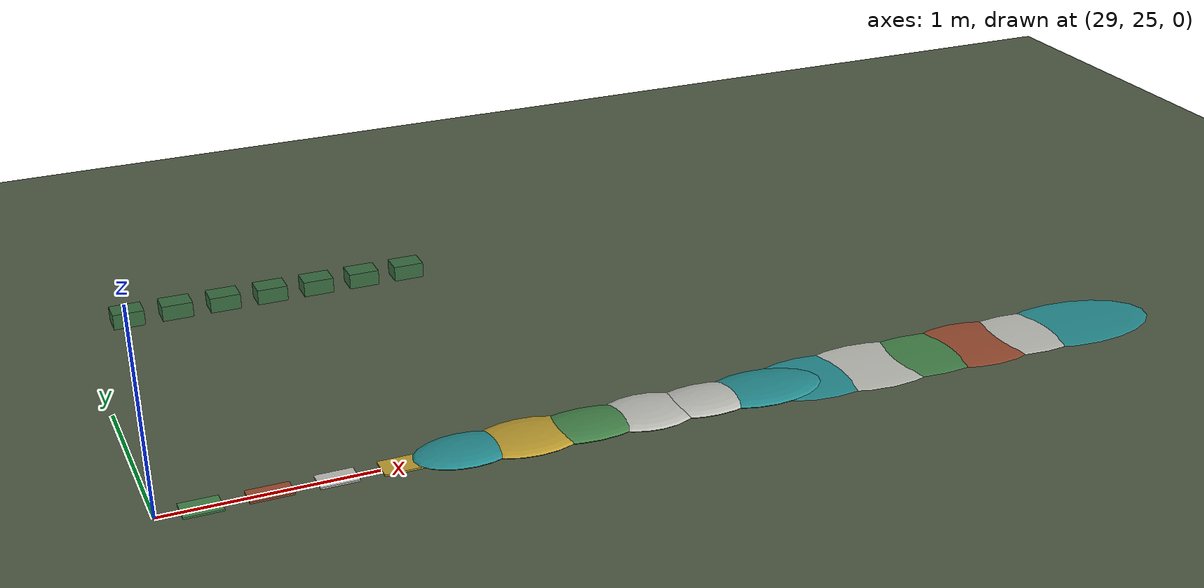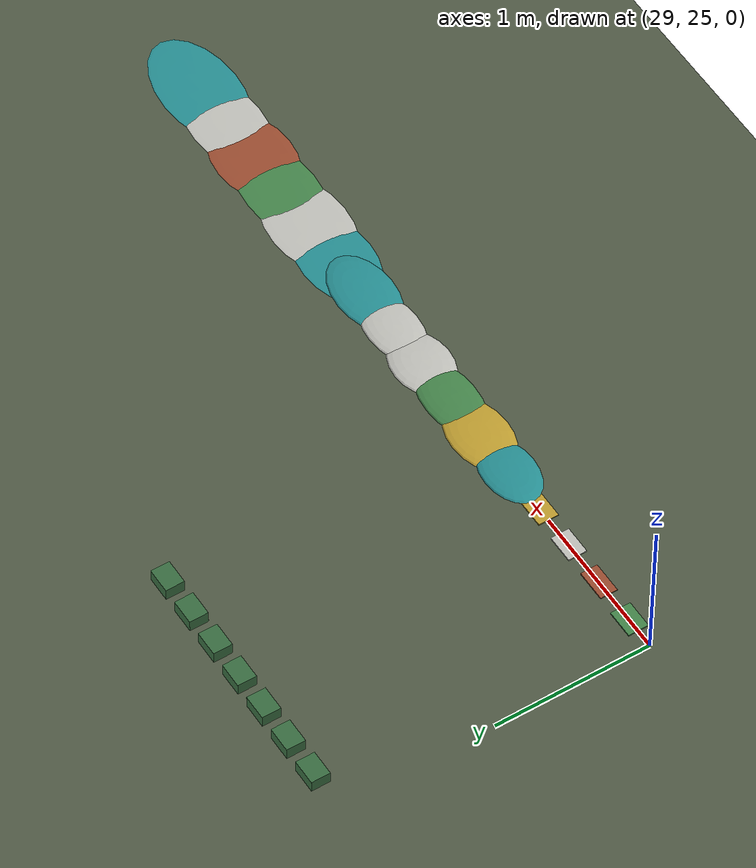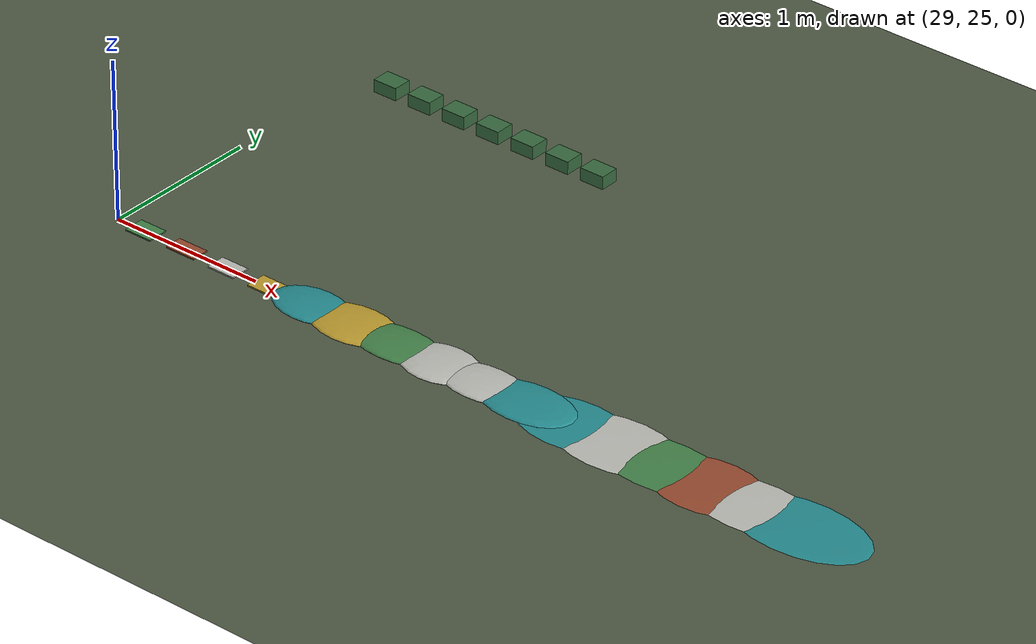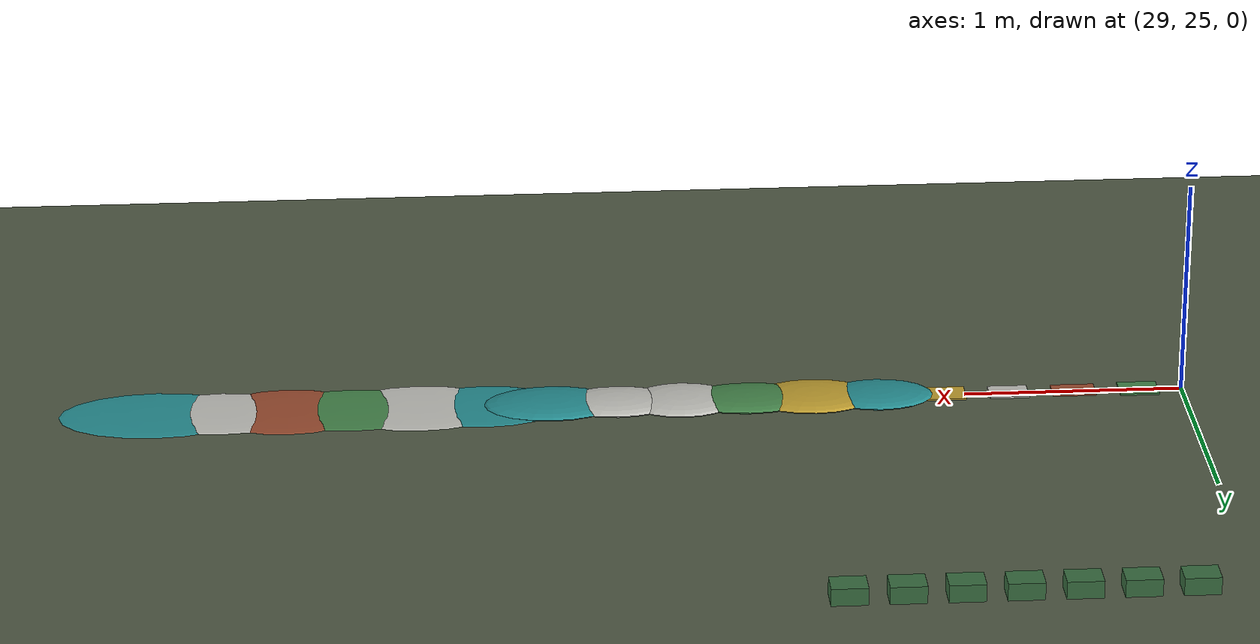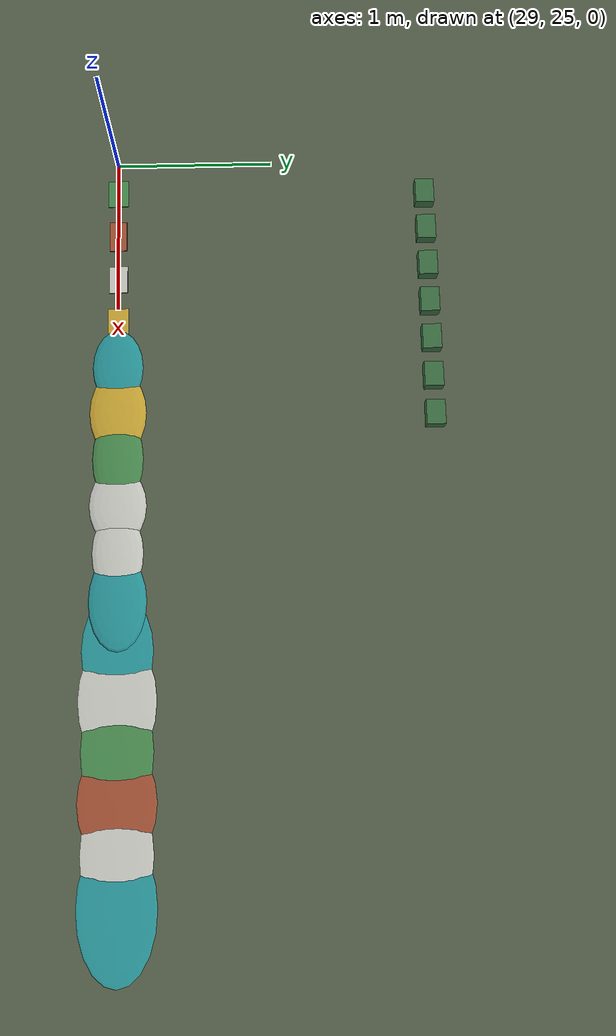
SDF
<sdf version="1.9">
 <world name="world_d_mixed_curb_vegetation">
  <model name="ground">
   <static>true</static>
   <link name="ground">
    <collision name="collision">
     <geometry><plane><normal>0 0 1</normal><size>80 80</size></plane></geometry>
    </collision>
    <visual name="visual">
     <geometry><plane><normal>0 0 1</normal><size>80 80</size></plane></geometry>
     <material>
      <ambient>0.31 0.35 0.27 1</ambient>
      <diffuse>0.31 0.35 0.27 1</diffuse>
      <specular>0.10 0.10 0.10 1</specular>
      <pbr><metal><roughness>0.76</roughness><metalness>0</metalness></metal></pbr>
     </material>
    </visual>
   </link>
  </model>
  <model name="paper_long_bands">
   <static>true</static>
   <pose>29.200 25 0.0080 0 0 0</pose>
   <link name="body">
    <visual name="visual">
     <geometry><box><size>0.1800 0.1300 0.0080</size></box></geometry>
     <material>
      <ambient>0.26667 0.51765 0.29020 1</ambient>
      <diffuse>0.26667 0.51765 0.29020 1</diffuse>
      <specular>0.10 0.10 0.10 1</specular>
      <pbr><metal><roughness>0.68</roughness><metalness>0</metalness></metal></pbr>
     </material>
    </visual>
    <collision name="collision"><geometry><box><size>0.1800 0.1300 0.0080</size></box></geometry></collision>
   </link>
   <plugin filename="gz-sim-label-system" name="gz::sim::systems::Label"><label>3</label></plugin>
  </model>
  <model name="paper_crumpled">
   <static>true</static>
   <pose>29.500 25 0.0080 0 0 0</pose>
   <link name="body">
    <visual name="visual">
     <geometry><box><size>0.2000 0.1100 0.0080</size></box></geometry>
     <material>
      <ambient>0.60392 0.29804 0.18824 1</ambient>
      <diffuse>0.60392 0.29804 0.18824 1</diffuse>
      <specular>0.10 0.10 0.10 1</specular>
      <pbr><metal><roughness>0.68</roughness><metalness>0</metalness></metal></pbr>
     </material>
    </visual>
    <collision name="collision"><geometry><box><size>0.2000 0.1100 0.0080</size></box></geometry></collision>
   </link>
   <plugin filename="gz-sim-label-system" name="gz::sim::systems::Label"><label>3</label></plugin>
  </model>
  <model name="paper_matte_grid">
   <static>true</static>
   <pose>29.800 25 0.0080 0 0 0</pose>
   <link name="body">
    <visual name="visual">
     <geometry><box><size>0.1800 0.1200 0.0080</size></box></geometry>
     <material>
      <ambient>0.74510 0.74510 0.72157 1</ambient>
      <diffuse>0.74510 0.74510 0.72157 1</diffuse>
      <specular>0.10 0.10 0.10 1</specular>
      <pbr><metal><roughness>0.68</roughness><metalness>0</metalness></metal></pbr>
     </material>
    </visual>
    <collision name="collision"><geometry><box><size>0.1800 0.1200 0.0080</size></box></geometry></collision>
   </link>
   <plugin filename="gz-sim-label-system" name="gz::sim::systems::Label"><label>3</label></plugin>
  </model>
  <model name="paper_unseen_torn">
   <static>true</static>
   <pose>30.100 25 0.0080 0 0 0</pose>
   <link name="body">
    <visual name="visual">
     <geometry><box><size>0.2000 0.1300 0.0080</size></box></geometry>
     <material>
      <ambient>0.74510 0.61569 0.18824 1</ambient>
      <diffuse>0.74510 0.61569 0.18824 1</diffuse>
      <specular>0.10 0.10 0.10 1</specular>
      <pbr><metal><roughness>0.68</roughness><metalness>0</metalness></metal></pbr>
     </material>
    </visual>
    <collision name="collision"><geometry><box><size>0.2000 0.1300 0.0080</size></box></geometry></collision>
   </link>
   <plugin filename="gz-sim-label-system" name="gz::sim::systems::Label"><label>3</label></plugin>
  </model>
  <model name="leaves_sparse">
   <static>true</static>
   <pose>30.400 25 0.0125 0 0 0</pose>
   <link name="body">
    <visual name="visual">
     <geometry><ellipsoid><radii>0.2500 0.1600 0.0250</radii></ellipsoid></geometry>
     <material>
      <ambient>0.14902 0.55686 0.57255 1</ambient>
      <diffuse>0.14902 0.55686 0.57255 1</diffuse>
      <specular>0.10 0.10 0.10 1</specular>
      <pbr><metal><roughness>0.68</roughness><metalness>0</metalness></metal></pbr>
     </material>
    </visual>
    <collision name="collision">
     <geometry><ellipsoid><radii>0.2500 0.1600 0.0250</radii></ellipsoid></geometry>
    </collision>
   </link>
   <plugin filename="gz-sim-label-system" name="gz::sim::systems::Label"><label>4</label></plugin>
  </model>
  <model name="leaves_dense">
   <static>true</static>
   <pose>30.700 25 0.0125 0 0 0</pose>
   <link name="body">
    <visual name="visual">
     <geometry><ellipsoid><radii>0.2800 0.1800 0.0250</radii></ellipsoid></geometry>
     <material>
      <ambient>0.74510 0.61569 0.18824 1</ambient>
      <diffuse>0.74510 0.61569 0.18824 1</diffuse>
      <specular>0.10 0.10 0.10 1</specular>
      <pbr><metal><roughness>0.68</roughness><metalness>0</metalness></metal></pbr>
     </material>
    </visual>
    <collision name="collision">
     <geometry><ellipsoid><radii>0.2800 0.1800 0.0250</radii></ellipsoid></geometry>
    </collision>
   </link>
   <plugin filename="gz-sim-label-system" name="gz::sim::systems::Label"><label>4</label></plugin>
  </model>
  <model name="leaves_long">
   <static>true</static>
   <pose>31.000 25 0.0125 0 0 0</pose>
   <link name="body">
    <visual name="visual">
     <geometry><ellipsoid><radii>0.3100 0.1600 0.0250</radii></ellipsoid></geometry>
     <material>
      <ambient>0.26667 0.51765 0.29020 1</ambient>
      <diffuse>0.26667 0.51765 0.29020 1</diffuse>
      <specular>0.10 0.10 0.10 1</specular>
      <pbr><metal><roughness>0.68</roughness><metalness>0</metalness></metal></pbr>
     </material>
    </visual>
    <collision name="collision">
     <geometry><ellipsoid><radii>0.3100 0.1600 0.0250</radii></ellipsoid></geometry>
    </collision>
   </link>
   <plugin filename="gz-sim-label-system" name="gz::sim::systems::Label"><label>4</label></plugin>
  </model>
  <model name="leaves_mixed">
   <static>true</static>
   <pose>31.300 25 0.0125 0 0 0</pose>
   <link name="body">
    <visual name="visual">
     <geometry><ellipsoid><radii>0.2500 0.1800 0.0250</radii></ellipsoid></geometry>
     <material>
      <ambient>0.74510 0.74510 0.72157 1</ambient>
      <diffuse>0.74510 0.74510 0.72157 1</diffuse>
      <specular>0.10 0.10 0.10 1</specular>
      <pbr><metal><roughness>0.68</roughness><metalness>0</metalness></metal></pbr>
     </material>
    </visual>
    <collision name="collision">
     <geometry><ellipsoid><radii>0.2500 0.1800 0.0250</radii></ellipsoid></geometry>
    </collision>
   </link>
   <plugin filename="gz-sim-label-system" name="gz::sim::systems::Label"><label>4</label></plugin>
  </model>
  <model name="leaves_matte">
   <static>true</static>
   <pose>31.600 25 0.0125 0 0 0</pose>
   <link name="body">
    <visual name="visual">
     <geometry><ellipsoid><radii>0.2800 0.1600 0.0250</radii></ellipsoid></geometry>
     <material>
      <ambient>0.74510 0.74510 0.72157 1</ambient>
      <diffuse>0.74510 0.74510 0.72157 1</diffuse>
      <specular>0.10 0.10 0.10 1</specular>
      <pbr><metal><roughness>0.68</roughness><metalness>0</metalness></metal></pbr>
     </material>
    </visual>
    <collision name="collision">
     <geometry><ellipsoid><radii>0.2800 0.1600 0.0250</radii></ellipsoid></geometry>
    </collision>
   </link>
   <plugin filename="gz-sim-label-system" name="gz::sim::systems::Label"><label>4</label></plugin>
  </model>
  <model name="leaves_unseen_windrow">
   <static>true</static>
   <pose>31.900 25 0.0125 0 0 0</pose>
   <link name="body">
    <visual name="visual">
     <geometry><ellipsoid><radii>0.3100 0.1800 0.0250</radii></ellipsoid></geometry>
     <material>
      <ambient>0.14902 0.55686 0.57255 1</ambient>
      <diffuse>0.14902 0.55686 0.57255 1</diffuse>
      <specular>0.10 0.10 0.10 1</specular>
      <pbr><metal><roughness>0.68</roughness><metalness>0</metalness></metal></pbr>
     </material>
    </visual>
    <collision name="collision">
     <geometry><ellipsoid><radii>0.3100 0.1800 0.0250</radii></ellipsoid></geometry>
    </collision>
   </link>
   <plugin filename="gz-sim-label-system" name="gz::sim::systems::Label"><label>4</label></plugin>
  </model>
  <model name="puddle_matte_small">
   <static>true</static>
   <pose>32.200 25 0.0080 0 0 0</pose>
   <link name="body">
    <visual name="visual">
     <geometry><ellipsoid><radii>0.3600 0.2200 0.0060</radii></ellipsoid></geometry>
     <material>
      <ambient>0.14902 0.55686 0.57255 1</ambient>
      <diffuse>0.14902 0.55686 0.57255 1</diffuse>
      <specular>0.10 0.10 0.10 1</specular>
      <pbr><metal><roughness>0.68</roughness><metalness>0</metalness></metal></pbr>
     </material>
    </visual>
    <collision name="collision">
     <geometry><ellipsoid><radii>0.3600 0.2200 0.0060</radii></ellipsoid></geometry>
    </collision>
   </link>
   <plugin filename="gz-sim-label-system" name="gz::sim::systems::Label"><label>5</label></plugin>
  </model>
  <model name="puddle_reflective">
   <static>true</static>
   <pose>32.500 25 0.0080 0 0 0</pose>
   <link name="body">
    <visual name="visual">
     <geometry><ellipsoid><radii>0.4000 0.2400 0.0060</radii></ellipsoid></geometry>
     <material>
      <ambient>0.74510 0.74510 0.72157 1</ambient>
      <diffuse>0.74510 0.74510 0.72157 1</diffuse>
      <specular>0.10 0.10 0.10 1</specular>
      <pbr><metal><roughness>0.68</roughness><metalness>0</metalness></metal></pbr>
     </material>
    </visual>
    <collision name="collision">
     <geometry><ellipsoid><radii>0.4000 0.2400 0.0060</radii></ellipsoid></geometry>
    </collision>
   </link>
   <plugin filename="gz-sim-label-system" name="gz::sim::systems::Label"><label>5</label></plugin>
  </model>
  <model name="puddle_irregular">
   <static>true</static>
   <pose>32.800 25 0.0080 0 0 0</pose>
   <link name="body">
    <visual name="visual">
     <geometry><ellipsoid><radii>0.4400 0.2200 0.0060</radii></ellipsoid></geometry>
     <material>
      <ambient>0.26667 0.51765 0.29020 1</ambient>
      <diffuse>0.26667 0.51765 0.29020 1</diffuse>
      <specular>0.10 0.10 0.10 1</specular>
      <pbr><metal><roughness>0.68</roughness><metalness>0</metalness></metal></pbr>
     </material>
    </visual>
    <collision name="collision">
     <geometry><ellipsoid><radii>0.4400 0.2200 0.0060</radii></ellipsoid></geometry>
    </collision>
   </link>
   <plugin filename="gz-sim-label-system" name="gz::sim::systems::Label"><label>5</label></plugin>
  </model>
  <model name="puddle_shallow">
   <static>true</static>
   <pose>33.100 25 0.0080 0 0 0</pose>
   <link name="body">
    <visual name="visual">
     <geometry><ellipsoid><radii>0.3600 0.2400 0.0060</radii></ellipsoid></geometry>
     <material>
      <ambient>0.60392 0.29804 0.18824 1</ambient>
      <diffuse>0.60392 0.29804 0.18824 1</diffuse>
      <specular>0.10 0.10 0.10 1</specular>
      <pbr><metal><roughness>0.68</roughness><metalness>0</metalness></metal></pbr>
     </material>
    </visual>
    <collision name="collision">
     <geometry><ellipsoid><radii>0.3600 0.2400 0.0060</radii></ellipsoid></geometry>
    </collision>
   </link>
   <plugin filename="gz-sim-label-system" name="gz::sim::systems::Label"><label>5</label></plugin>
  </model>
  <model name="puddle_shadowed">
   <static>true</static>
   <pose>33.400 25 0.0080 0 0 0</pose>
   <link name="body">
    <visual name="visual">
     <geometry><ellipsoid><radii>0.4000 0.2200 0.0060</radii></ellipsoid></geometry>
     <material>
      <ambient>0.74510 0.74510 0.72157 1</ambient>
      <diffuse>0.74510 0.74510 0.72157 1</diffuse>
      <specular>0.10 0.10 0.10 1</specular>
      <pbr><metal><roughness>0.68</roughness><metalness>0</metalness></metal></pbr>
     </material>
    </visual>
    <collision name="collision">
     <geometry><ellipsoid><radii>0.4000 0.2200 0.0060</radii></ellipsoid></geometry>
    </collision>
   </link>
   <plugin filename="gz-sim-label-system" name="gz::sim::systems::Label"><label>5</label></plugin>
  </model>
  <model name="puddle_unseen_split">
   <static>true</static>
   <pose>33.700 25 0.0080 0 0 0</pose>
   <link name="body">
    <visual name="visual">
     <geometry><ellipsoid><radii>0.4400 0.2400 0.0060</radii></ellipsoid></geometry>
     <material>
      <ambient>0.14902 0.55686 0.57255 1</ambient>
      <diffuse>0.14902 0.55686 0.57255 1</diffuse>
      <specular>0.10 0.10 0.10 1</specular>
      <pbr><metal><roughness>0.68</roughness><metalness>0</metalness></metal></pbr>
     </material>
    </visual>
    <collision name="collision">
     <geometry><ellipsoid><radii>0.4400 0.2400 0.0060</radii></ellipsoid></geometry>
    </collision>
   </link>
   <plugin filename="gz-sim-label-system" name="gz::sim::systems::Label"><label>5</label></plugin>
  </model>
  <model name="negative_cardboard">
   <static>true</static>
   <pose>29.25 27 0.04 0 0 0</pose>
   <link name="body">
    <visual name="visual">
     <geometry><box><size>0.16 0.12 0.08</size></box></geometry>
     <material>
      <ambient>0.22 0.42 0.25 1</ambient>
      <diffuse>0.22 0.42 0.25 1</diffuse>
      <specular>0.10 0.10 0.10 1</specular>
      <pbr><metal><roughness>0.68</roughness><metalness>0</metalness></metal></pbr>
     </material>
    </visual>
    <collision name="collision"><geometry><box><size>0.16 0.12 0.08</size></box></geometry></collision>
   </link>
   <plugin filename="gz-sim-label-system" name="gz::sim::systems::Label"><label>0</label></plugin>
  </model>
  <model name="negative_fixed_bin">
   <static>true</static>
   <pose>29.5 27 0.04 0 0 0</pose>
   <link name="body">
    <visual name="visual">
     <geometry><box><size>0.16 0.12 0.08</size></box></geometry>
     <material>
      <ambient>0.22 0.42 0.25 1</ambient>
      <diffuse>0.22 0.42 0.25 1</diffuse>
      <specular>0.10 0.10 0.10 1</specular>
      <pbr><metal><roughness>0.68</roughness><metalness>0</metalness></metal></pbr>
     </material>
    </visual>
    <collision name="collision"><geometry><box><size>0.16 0.12 0.08</size></box></geometry></collision>
   </link>
   <plugin filename="gz-sim-label-system" name="gz::sim::systems::Label"><label>0</label></plugin>
  </model>
  <model name="negative_reflective_patch">
   <static>true</static>
   <pose>29.75 27 0.04 0 0 0</pose>
   <link name="body">
    <visual name="visual">
     <geometry><box><size>0.16 0.12 0.08</size></box></geometry>
     <material>
      <ambient>0.22 0.42 0.25 1</ambient>
      <diffuse>0.22 0.42 0.25 1</diffuse>
      <specular>0.10 0.10 0.10 1</specular>
      <pbr><metal><roughness>0.68</roughness><metalness>0</metalness></metal></pbr>
     </material>
    </visual>
    <collision name="collision"><geometry><box><size>0.16 0.12 0.08</size></box></geometry></collision>
   </link>
   <plugin filename="gz-sim-label-system" name="gz::sim::systems::Label"><label>0</label></plugin>
  </model>
  <model name="negative_shadow">
   <static>true</static>
   <pose>30.0 27 0.04 0 0 0</pose>
   <link name="body">
    <visual name="visual">
     <geometry><box><size>0.16 0.12 0.08</size></box></geometry>
     <material>
      <ambient>0.22 0.42 0.25 1</ambient>
      <diffuse>0.22 0.42 0.25 1</diffuse>
      <specular>0.10 0.10 0.10 1</specular>
      <pbr><metal><roughness>0.68</roughness><metalness>0</metalness></metal></pbr>
     </material>
    </visual>
    <collision name="collision"><geometry><box><size>0.16 0.12 0.08</size></box></geometry></collision>
   </link>
   <plugin filename="gz-sim-label-system" name="gz::sim::systems::Label"><label>0</label></plugin>
  </model>
  <model name="negative_wet_asphalt">
   <static>true</static>
   <pose>30.25 27 0.04 0 0 0</pose>
   <link name="body">
    <visual name="visual">
     <geometry><box><size>0.16 0.12 0.08</size></box></geometry>
     <material>
      <ambient>0.22 0.42 0.25 1</ambient>
      <diffuse>0.22 0.42 0.25 1</diffuse>
      <specular>0.10 0.10 0.10 1</specular>
      <pbr><metal><roughness>0.68</roughness><metalness>0</metalness></metal></pbr>
     </material>
    </visual>
    <collision name="collision"><geometry><box><size>0.16 0.12 0.08</size></box></geometry></collision>
   </link>
   <plugin filename="gz-sim-label-system" name="gz::sim::systems::Label"><label>0</label></plugin>
  </model>
  <model name="negative_leaves_outside_target_region">
   <static>true</static>
   <pose>30.5 27 0.04 0 0 0</pose>
   <link name="body">
    <visual name="visual">
     <geometry><box><size>0.16 0.12 0.08</size></box></geometry>
     <material>
      <ambient>0.22 0.42 0.25 1</ambient>
      <diffuse>0.22 0.42 0.25 1</diffuse>
      <specular>0.10 0.10 0.10 1</specular>
      <pbr><metal><roughness>0.68</roughness><metalness>0</metalness></metal></pbr>
     </material>
    </visual>
    <collision name="collision"><geometry><box><size>0.16 0.12 0.08</size></box></geometry></collision>
   </link>
   <plugin filename="gz-sim-label-system" name="gz::sim::systems::Label"><label>0</label></plugin>
  </model>
  <model name="negative_robot_self_pixels">
   <static>true</static>
   <pose>30.75 27 0.04 0 0 0</pose>
   <link name="body">
    <visual name="visual">
     <geometry><box><size>0.16 0.12 0.08</size></box></geometry>
     <material>
      <ambient>0.22 0.42 0.25 1</ambient>
      <diffuse>0.22 0.42 0.25 1</diffuse>
      <specular>0.10 0.10 0.10 1</specular>
      <pbr><metal><roughness>0.68</roughness><metalness>0</metalness></metal></pbr>
     </material>
    </visual>
    <collision name="collision"><geometry><box><size>0.16 0.12 0.08</size></box></geometry></collision>
   </link>
   <plugin filename="gz-sim-label-system" name="gz::sim::systems::Label"><label>0</label></plugin>
  </model>
 </world>
</sdf>
